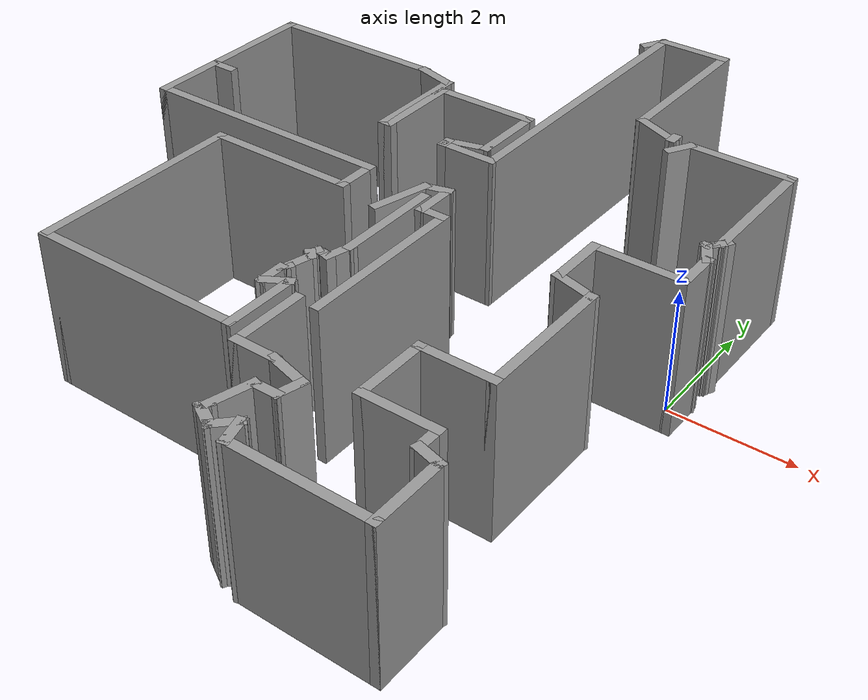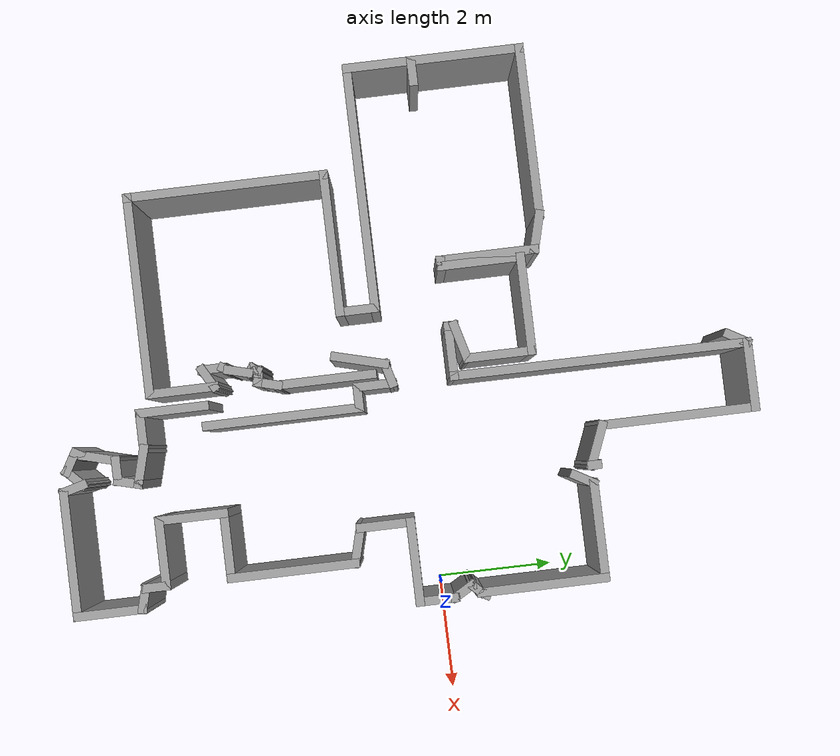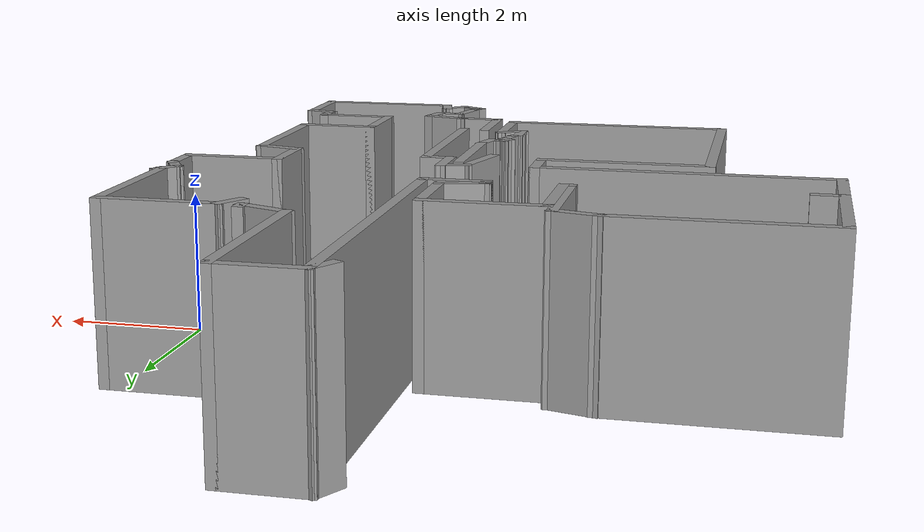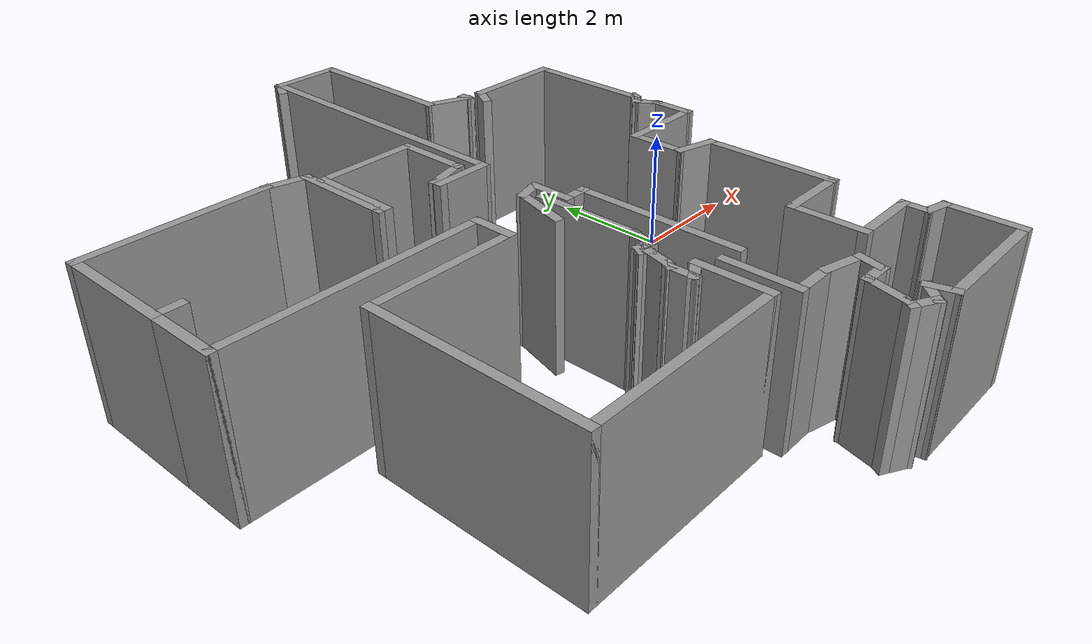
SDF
<?xml version='1.0'?>
<sdf version='1.6'>
  <model name='Untitled'>
    <pose frame=''>-4.2949 -0.2647 0 0 -0 0</pose>
    <link name='Wall_11'>
      <collision name='Wall_11_Collision'>
        <geometry>
          <box>
            <size>1 0.15 2.5</size>
          </box>
        </geometry>
        <pose frame=''>0 0 1.25 0 -0 0</pose>
      </collision>
      <visual name='Wall_11_Visual'>
        <pose frame=''>0 0 1.25 0 -0 0</pose>
        <geometry>
          <box>
            <size>1 0.15 2.5</size>
          </box>
        </geometry>
        <material>
          <script>
            <uri>file://media/materials/scripts/gazebo.material</uri>
            <name>Gazebo/Grey</name>
          </script>
          <ambient>1 1 1 1</ambient>
        </material>
        <meta>
          <layer>0</layer>
        </meta>
      </visual>
      <pose frame=''>0.399139 0.885621 0 0 -0 3.14159</pose>
    </link>
    <link name='Wall_12'>
      <collision name='Wall_12_Collision'>
        <geometry>
          <box>
            <size>0.25 0.15 2.5</size>
          </box>
        </geometry>
        <pose frame=''>0 0 1.25 0 -0 0</pose>
      </collision>
      <visual name='Wall_12_Visual'>
        <pose frame=''>0 0 1.25 0 -0 0</pose>
        <geometry>
          <box>
            <size>0.25 0.15 2.5</size>
          </box>
        </geometry>
        <material>
          <script>
            <uri>file://media/materials/scripts/gazebo.material</uri>
            <name>Gazebo/Grey</name>
          </script>
          <ambient>1 1 1 1</ambient>
        </material>
        <meta>
          <layer>0</layer>
        </meta>
      </visual>
      <pose frame=''>-0.025861 0.935621 0 0 -0 1.5708</pose>
    </link>
    <link name='Wall_13'>
      <collision name='Wall_13_Collision'>
        <geometry>
          <box>
            <size>0.75 0.15 2.5</size>
          </box>
        </geometry>
        <pose frame=''>0 0 1.25 0 -0 0</pose>
      </collision>
      <visual name='Wall_13_Visual'>
        <pose frame=''>0 0 1.25 0 -0 0</pose>
        <geometry>
          <box>
            <size>0.75 0.15 2.5</size>
          </box>
        </geometry>
        <material>
          <script>
            <uri>file://media/materials/scripts/gazebo.material</uri>
            <name>Gazebo/Grey</name>
          </script>
          <ambient>1 1 1 1</ambient>
        </material>
        <meta>
          <layer>0</layer>
        </meta>
      </visual>
      <pose frame=''>0.263917 1.06327 0 0 -0 0.261799</pose>
    </link>
    <link name='Wall_14'>
      <collision name='Wall_14_Collision'>
        <geometry>
          <box>
            <size>1.25 0.15 2.5</size>
          </box>
        </geometry>
        <pose frame=''>0 0 1.25 0 -0 0</pose>
      </collision>
      <visual name='Wall_14_Visual'>
        <pose frame=''>0 0 1.25 0 -0 0</pose>
        <geometry>
          <box>
            <size>1.25 0.15 2.5</size>
          </box>
        </geometry>
        <material>
          <script>
            <uri>file://media/materials/scripts/gazebo.material</uri>
            <name>Gazebo/Grey</name>
          </script>
          <ambient>1 1 1 1</ambient>
        </material>
        <meta>
          <layer>0</layer>
        </meta>
      </visual>
      <pose frame=''>0.553695 1.69091 0 0 -0 1.5708</pose>
    </link>
    <link name='Wall_15'>
      <collision name='Wall_15_Collision'>
        <geometry>
          <box>
            <size>1.75 0.15 2.5</size>
          </box>
        </geometry>
        <pose frame=''>0 0 1.25 0 -0 0</pose>
      </collision>
      <visual name='Wall_15_Visual'>
        <pose frame=''>0 0 1.25 0 -0 0</pose>
        <geometry>
          <box>
            <size>1.75 0.15 2.5</size>
          </box>
        </geometry>
        <material>
          <script>
            <uri>file://media/materials/scripts/gazebo.material</uri>
            <name>Gazebo/Grey</name>
          </script>
          <ambient>1 1 1 1</ambient>
        </material>
        <meta>
          <layer>0</layer>
        </meta>
      </visual>
      <pose frame=''>-0.246305 2.24091 0 0 -0 3.14159</pose>
    </link>
    <link name='Wall_16'>
      <collision name='Wall_16_Collision'>
        <geometry>
          <box>
            <size>1.5 0.15 2.5</size>
          </box>
        </geometry>
        <pose frame=''>0 0 1.25 0 -0 0</pose>
      </collision>
      <visual name='Wall_16_Visual'>
        <pose frame=''>0 0 1.25 0 -0 0</pose>
        <geometry>
          <box>
            <size>1.5 0.15 2.5</size>
          </box>
        </geometry>
        <material>
          <script>
            <uri>file://media/materials/scripts/gazebo.material</uri>
            <name>Gazebo/Grey</name>
          </script>
          <ambient>1 1 1 1</ambient>
        </material>
        <meta>
          <layer>0</layer>
        </meta>
      </visual>
      <pose frame=''>-1.04631 1.56591 0 0 -0 -1.5708</pose>
    </link>
    <link name='Wall_17'>
      <collision name='Wall_17_Collision'>
        <geometry>
          <box>
            <size>0.25 0.15 2.5</size>
          </box>
        </geometry>
        <pose frame=''>0 0 1.25 0 -0 0</pose>
      </collision>
      <visual name='Wall_17_Visual'>
        <pose frame=''>0 0 1.25 0 -0 0</pose>
        <geometry>
          <box>
            <size>0.25 0.15 2.5</size>
          </box>
        </geometry>
        <material>
          <script>
            <uri>file://media/materials/scripts/gazebo.material</uri>
            <name>Gazebo/Grey</name>
          </script>
          <ambient>1 1 1 1</ambient>
        </material>
        <meta>
          <layer>0</layer>
        </meta>
      </visual>
      <pose frame=''>-1.09631 0.890912 0 0 -0 3.14159</pose>
    </link>
    <link name='Wall_18'>
      <collision name='Wall_18_Collision'>
        <geometry>
          <box>
            <size>1.75 0.15 2.5</size>
          </box>
        </geometry>
        <pose frame=''>0 0 1.25 0 -0 0</pose>
      </collision>
      <visual name='Wall_18_Visual'>
        <pose frame=''>0 0 1.25 0 -0 0</pose>
        <geometry>
          <box>
            <size>1.75 0.15 2.5</size>
          </box>
        </geometry>
        <material>
          <script>
            <uri>file://media/materials/scripts/gazebo.material</uri>
            <name>Gazebo/Grey</name>
          </script>
          <ambient>1 1 1 1</ambient>
        </material>
        <meta>
          <layer>0</layer>
        </meta>
      </visual>
      <pose frame=''>-1.1463 1.69091 0 0 -0 1.5708</pose>
    </link>
    <link name='Wall_19'>
      <collision name='Wall_19_Collision'>
        <geometry>
          <box>
            <size>0.75 0.15 2.5</size>
          </box>
        </geometry>
        <pose frame=''>0 0 1.25 0 -0 0</pose>
      </collision>
      <visual name='Wall_19_Visual'>
        <pose frame=''>0 0 1.25 0 -0 0</pose>
        <geometry>
          <box>
            <size>0.75 0.15 2.5</size>
          </box>
        </geometry>
        <material>
          <script>
            <uri>file://media/materials/scripts/gazebo.material</uri>
            <name>Gazebo/Grey</name>
          </script>
          <ambient>1 1 1 1</ambient>
        </material>
        <meta>
          <layer>0</layer>
        </meta>
      </visual>
      <pose frame=''>-1.43608 2.56856 0 0 -0 2.87979</pose>
    </link>
    <link name='Wall_2'>
      <collision name='Wall_2_Collision'>
        <geometry>
          <box>
            <size>1.25 0.15 2.5</size>
          </box>
        </geometry>
        <pose frame=''>0 0 1.25 0 -0 0</pose>
      </collision>
      <visual name='Wall_2_Visual'>
        <pose frame=''>0 0 1.25 0 -0 0</pose>
        <geometry>
          <box>
            <size>1.25 0.15 2.5</size>
          </box>
        </geometry>
        <material>
          <script>
            <uri>file://media/materials/scripts/gazebo.material</uri>
            <name>Gazebo/Grey</name>
          </script>
          <ambient>1 1 1 1</ambient>
        </material>
        <meta>
          <layer>0</layer>
        </meta>
      </visual>
      <pose frame=''>1.39515 5.87075 0 0 -0 3.14159</pose>
    </link>
    <link name='Wall_20'>
      <collision name='Wall_20_Collision'>
        <geometry>
          <box>
            <size>3 0.15 2.5</size>
          </box>
        </geometry>
        <pose frame=''>0 0 1.25 0 -0 0</pose>
      </collision>
      <visual name='Wall_20_Visual'>
        <pose frame=''>0 0 1.25 0 -0 0</pose>
        <geometry>
          <box>
            <size>3 0.15 2.5</size>
          </box>
        </geometry>
        <material>
          <script>
            <uri>file://media/materials/scripts/gazebo.material</uri>
            <name>Gazebo/Grey</name>
          </script>
          <ambient>1 1 1 1</ambient>
        </material>
        <meta>
          <layer>0</layer>
        </meta>
      </visual>
      <pose frame=''>-3.15086 2.6462 0 0 -0 3.14159</pose>
    </link>
    <link name='Wall_21'>
      <collision name='Wall_21_Collision'>
        <geometry>
          <box>
            <size>2 0.15 2.5</size>
          </box>
        </geometry>
        <pose frame=''>0 0 1.25 0 -0 0</pose>
      </collision>
      <visual name='Wall_21_Visual'>
        <pose frame=''>0 0 1.25 0 -0 0</pose>
        <geometry>
          <box>
            <size>2 0.15 2.5</size>
          </box>
        </geometry>
        <material>
          <script>
            <uri>file://media/materials/scripts/gazebo.material</uri>
            <name>Gazebo/Grey</name>
          </script>
          <ambient>1 1 1 1</ambient>
        </material>
        <meta>
          <layer>0</layer>
        </meta>
      </visual>
      <pose frame=''>-4.57586 1.7212 0 0 -0 -1.5708</pose>
    </link>
    <link name='Wall_22'>
      <collision name='Wall_22_Collision'>
        <geometry>
          <box>
            <size>0.5 0.15 2.5</size>
          </box>
        </geometry>
        <pose frame=''>0 0 1.25 0 -0 0</pose>
      </collision>
      <visual name='Wall_22_Visual'>
        <pose frame=''>0 0 1.25 0 -0 0</pose>
        <geometry>
          <box>
            <size>0.5 0.15 2.5</size>
          </box>
        </geometry>
        <material>
          <script>
            <uri>file://media/materials/scripts/gazebo.material</uri>
            <name>Gazebo/Grey</name>
          </script>
          <ambient>1 1 1 1</ambient>
        </material>
        <meta>
          <layer>0</layer>
        </meta>
      </visual>
      <pose frame=''>-4.40086 0.796204 0 0 -0 0</pose>
    </link>
    <link name='Wall_24'>
      <collision name='Wall_24_Collision'>
        <geometry>
          <box>
            <size>1.25 0.15 2.5</size>
          </box>
        </geometry>
        <pose frame=''>0 0 1.25 0 -0 0</pose>
      </collision>
      <visual name='Wall_24_Visual'>
        <pose frame=''>0 0 1.25 0 -0 0</pose>
        <geometry>
          <box>
            <size>1.25 0.15 2.5</size>
          </box>
        </geometry>
        <material>
          <script>
            <uri>file://media/materials/scripts/gazebo.material</uri>
            <name>Gazebo/Grey</name>
          </script>
          <ambient>1 1 1 1</ambient>
        </material>
        <meta>
          <layer>0</layer>
        </meta>
      </visual>
      <pose frame=''>-4.57586 0.246204 0 0 -0 -1.5708</pose>
    </link>
    <link name='Wall_25'>
      <collision name='Wall_25_Collision'>
        <geometry>
          <box>
            <size>4.25 0.15 2.5</size>
          </box>
        </geometry>
        <pose frame=''>0 0 1.25 0 -0 0</pose>
      </collision>
      <visual name='Wall_25_Visual'>
        <pose frame=''>0 0 1.25 0 -0 0</pose>
        <geometry>
          <box>
            <size>4.25 0.15 2.5</size>
          </box>
        </geometry>
        <material>
          <script>
            <uri>file://media/materials/scripts/gazebo.material</uri>
            <name>Gazebo/Grey</name>
          </script>
          <ambient>1 1 1 1</ambient>
        </material>
        <meta>
          <layer>0</layer>
        </meta>
      </visual>
      <pose frame=''>-2.52586 -0.303796 0 0 -0 0</pose>
    </link>
    <link name='Wall_26'>
      <collision name='Wall_26_Collision'>
        <geometry>
          <box>
            <size>0.75 0.15 2.5</size>
          </box>
        </geometry>
        <pose frame=''>0 0 1.25 0 -0 0</pose>
      </collision>
      <visual name='Wall_26_Visual'>
        <pose frame=''>0 0 1.25 0 -0 0</pose>
        <geometry>
          <box>
            <size>0.75 0.15 2.5</size>
          </box>
        </geometry>
        <material>
          <script>
            <uri>file://media/materials/scripts/gazebo.material</uri>
            <name>Gazebo/Grey</name>
          </script>
          <ambient>1 1 1 1</ambient>
        </material>
        <meta>
          <layer>0</layer>
        </meta>
      </visual>
      <pose frame=''>-0.475861 -0.603796 0 0 -0 -1.5708</pose>
    </link>
    <link name='Wall_27'>
      <collision name='Wall_27_Collision'>
        <geometry>
          <box>
            <size>2.5 0.15 2.5</size>
          </box>
        </geometry>
        <pose frame=''>0 0 1.25 0 -0 0</pose>
      </collision>
      <visual name='Wall_27_Visual'>
        <pose frame=''>0 0 1.25 0 -0 0</pose>
        <geometry>
          <box>
            <size>2.5 0.15 2.5</size>
          </box>
        </geometry>
        <material>
          <script>
            <uri>file://media/materials/scripts/gazebo.material</uri>
            <name>Gazebo/Grey</name>
          </script>
          <ambient>1 1 1 1</ambient>
        </material>
        <meta>
          <layer>0</layer>
        </meta>
      </visual>
      <pose frame=''>-1.65086 -0.903796 0 0 -0 3.14159</pose>
    </link>
    <link name='Wall_29'>
      <collision name='Wall_29_Collision'>
        <geometry>
          <box>
            <size>3.5 0.15 2.5</size>
          </box>
        </geometry>
        <pose frame=''>0 0 1.25 0 -0 0</pose>
      </collision>
      <visual name='Wall_29_Visual'>
        <pose frame=''>0 0 1.25 0 -0 0</pose>
        <geometry>
          <box>
            <size>3.5 0.15 2.5</size>
          </box>
        </geometry>
        <material>
          <script>
            <uri>file://media/materials/scripts/gazebo.material</uri>
            <name>Gazebo/Grey</name>
          </script>
          <ambient>1 1 1 1</ambient>
        </material>
        <meta>
          <layer>0</layer>
        </meta>
      </visual>
      <pose frame=''>-2.82586 -2.5788 0 0 -0 -1.5708</pose>
    </link>
    <link name='Wall_3'>
      <collision name='Wall_3_Collision'>
        <geometry>
          <box>
            <size>0.5 0.15 2.5</size>
          </box>
        </geometry>
        <pose frame=''>0 0 1.25 0 -0 0</pose>
      </collision>
      <visual name='Wall_3_Visual'>
        <pose frame=''>0 0 1.25 0 -0 0</pose>
        <geometry>
          <box>
            <size>0.5 0.15 2.5</size>
          </box>
        </geometry>
        <material>
          <script>
            <uri>file://media/materials/scripts/gazebo.material</uri>
            <name>Gazebo/Grey</name>
          </script>
          <ambient>1 1 1 1</ambient>
        </material>
        <meta>
          <layer>0</layer>
        </meta>
      </visual>
      <pose frame=''>0.757655 5.71919 0 0 -0 -2.0944</pose>
    </link>
    <link name='Wall_30'>
      <collision name='Wall_30_Collision'>
        <geometry>
          <box>
            <size>3.5 0.15 2.5</size>
          </box>
        </geometry>
        <pose frame=''>0 0 1.25 0 -0 0</pose>
      </collision>
      <visual name='Wall_30_Visual'>
        <pose frame=''>0 0 1.25 0 -0 0</pose>
        <geometry>
          <box>
            <size>3.5 0.15 2.5</size>
          </box>
        </geometry>
        <material>
          <script>
            <uri>file://media/materials/scripts/gazebo.material</uri>
            <name>Gazebo/Grey</name>
          </script>
          <ambient>1 1 1 1</ambient>
        </material>
        <meta>
          <layer>0</layer>
        </meta>
      </visual>
      <pose frame=''>-1.15086 -4.2538 0 0 -0 0</pose>
    </link>
    <link name='Wall_31'>
      <collision name='Wall_31_Collision'>
        <geometry>
          <box>
            <size>1.25 0.15 2.5</size>
          </box>
        </geometry>
        <pose frame=''>0 0 1.25 0 -0 0</pose>
      </collision>
      <visual name='Wall_31_Visual'>
        <pose frame=''>0 0 1.25 0 -0 0</pose>
        <geometry>
          <box>
            <size>1.25 0.15 2.5</size>
          </box>
        </geometry>
        <material>
          <script>
            <uri>file://media/materials/scripts/gazebo.material</uri>
            <name>Gazebo/Grey</name>
          </script>
          <ambient>1 1 1 1</ambient>
        </material>
        <meta>
          <layer>0</layer>
        </meta>
      </visual>
      <pose frame=''>0.524139 -3.7038 0 0 -0 1.5708</pose>
    </link>
    <link name='Wall_33'>
      <collision name='Wall_33_Collision'>
        <geometry>
          <box>
            <size>0.5 0.15 2.5</size>
          </box>
        </geometry>
        <pose frame=''>0 0 1.25 0 -0 0</pose>
      </collision>
      <visual name='Wall_33_Visual'>
        <pose frame=''>0 0 1.25 0 -0 0</pose>
        <geometry>
          <box>
            <size>0.5 0.15 2.5</size>
          </box>
        </geometry>
        <material>
          <script>
            <uri>file://media/materials/scripts/gazebo.material</uri>
            <name>Gazebo/Grey</name>
          </script>
          <ambient>1 1 1 1</ambient>
        </material>
        <meta>
          <layer>0</layer>
        </meta>
      </visual>
      <pose frame=''>0.372585 -3.2413 0 0 -0 -2.61799</pose>
    </link>
    <link name='Wall_34'>
      <collision name='Wall_34_Collision'>
        <geometry>
          <box>
            <size>0.5 0.15 2.5</size>
          </box>
        </geometry>
        <pose frame=''>0 0 1.25 0 -0 0</pose>
      </collision>
      <visual name='Wall_34_Visual'>
        <pose frame=''>0 0 1.25 0 -0 0</pose>
        <geometry>
          <box>
            <size>0.5 0.15 2.5</size>
          </box>
        </geometry>
        <material>
          <script>
            <uri>file://media/materials/scripts/gazebo.material</uri>
            <name>Gazebo/Grey</name>
          </script>
          <ambient>1 1 1 1</ambient>
        </material>
        <meta>
          <layer>0</layer>
        </meta>
      </visual>
      <pose frame=''>0.221031 -3.1538 0 0 -0 1.5708</pose>
    </link>
    <link name='Wall_35'>
      <collision name='Wall_35_Collision'>
        <geometry>
          <box>
            <size>0.25 0.15 2.5</size>
          </box>
        </geometry>
        <pose frame=''>0 0 1.25 0 -0 0</pose>
      </collision>
      <visual name='Wall_35_Visual'>
        <pose frame=''>0 0 1.25 0 -0 0</pose>
        <geometry>
          <box>
            <size>0.25 0.15 2.5</size>
          </box>
        </geometry>
        <material>
          <script>
            <uri>file://media/materials/scripts/gazebo.material</uri>
            <name>Gazebo/Grey</name>
          </script>
          <ambient>1 1 1 1</ambient>
        </material>
        <meta>
          <layer>0</layer>
        </meta>
      </visual>
      <pose frame=''>0.24603 -2.93549 0 0 -0 1.0472</pose>
    </link>
    <link name='Wall_36'>
      <collision name='Wall_36_Collision'>
        <geometry>
          <box>
            <size>0.5 0.15 2.5</size>
          </box>
        </geometry>
        <pose frame=''>0 0 1.25 0 -0 0</pose>
      </collision>
      <visual name='Wall_36_Visual'>
        <pose frame=''>0 0 1.25 0 -0 0</pose>
        <geometry>
          <box>
            <size>0.5 0.15 2.5</size>
          </box>
        </geometry>
        <material>
          <script>
            <uri>file://media/materials/scripts/gazebo.material</uri>
            <name>Gazebo/Grey</name>
          </script>
          <ambient>1 1 1 1</ambient>
        </material>
        <meta>
          <layer>0</layer>
        </meta>
      </visual>
      <pose frame=''>0.316324 -2.72316 0 0 -0 1.309</pose>
    </link>
    <link name='Wall_37'>
      <collision name='Wall_37_Collision'>
        <geometry>
          <box>
            <size>0.25 0.15 2.5</size>
          </box>
        </geometry>
        <pose frame=''>0 0 1.25 0 -0 0</pose>
      </collision>
      <visual name='Wall_37_Visual'>
        <pose frame=''>0 0 1.25 0 -0 0</pose>
        <geometry>
          <box>
            <size>0.25 0.15 2.5</size>
          </box>
        </geometry>
        <material>
          <script>
            <uri>file://media/materials/scripts/gazebo.material</uri>
            <name>Gazebo/Grey</name>
          </script>
          <ambient>1 1 1 1</ambient>
        </material>
        <meta>
          <layer>0</layer>
        </meta>
      </visual>
      <pose frame=''>0.326262 -2.51876 0 0 -0 2.35619</pose>
    </link>
    <link name='Wall_38'>
      <collision name='Wall_38_Collision'>
        <geometry>
          <box>
            <size>0.25 0.15 2.5</size>
          </box>
        </geometry>
        <pose frame=''>0 0 1.25 0 -0 0</pose>
      </collision>
      <visual name='Wall_38_Visual'>
        <pose frame=''>0 0 1.25 0 -0 0</pose>
        <geometry>
          <box>
            <size>0.25 0.15 2.5</size>
          </box>
        </geometry>
        <material>
          <script>
            <uri>file://media/materials/scripts/gazebo.material</uri>
            <name>Gazebo/Grey</name>
          </script>
          <ambient>1 1 1 1</ambient>
        </material>
        <meta>
          <layer>0</layer>
        </meta>
      </visual>
      <pose frame=''>0.315906 -2.44011 0 0 -0 1.0472</pose>
    </link>
    <link name='Wall_39'>
      <collision name='Wall_39_Collision'>
        <geometry>
          <box>
            <size>0.25 0.15 2.5</size>
          </box>
        </geometry>
        <pose frame=''>0 0 1.25 0 -0 0</pose>
      </collision>
      <visual name='Wall_39_Visual'>
        <pose frame=''>0 0 1.25 0 -0 0</pose>
        <geometry>
          <box>
            <size>0.25 0.15 2.5</size>
          </box>
        </geometry>
        <material>
          <script>
            <uri>file://media/materials/scripts/gazebo.material</uri>
            <name>Gazebo/Grey</name>
          </script>
          <ambient>1 1 1 1</ambient>
        </material>
        <meta>
          <layer>0</layer>
        </meta>
      </visual>
      <pose frame=''>0.390906 -2.39681 0 0 -0 0</pose>
    </link>
    <link name='Wall_40'>
      <collision name='Wall_40_Collision'>
        <geometry>
          <box>
            <size>0.25 0.15 2.5</size>
          </box>
        </geometry>
        <pose frame=''>0 0 1.25 0 -0 0</pose>
      </collision>
      <visual name='Wall_40_Visual'>
        <pose frame=''>0 0 1.25 0 -0 0</pose>
        <geometry>
          <box>
            <size>0.25 0.15 2.5</size>
          </box>
        </geometry>
        <material>
          <script>
            <uri>file://media/materials/scripts/gazebo.material</uri>
            <name>Gazebo/Grey</name>
          </script>
          <ambient>1 1 1 1</ambient>
        </material>
        <meta>
          <layer>0</layer>
        </meta>
      </visual>
      <pose frame=''>0.489203 -2.40975 0 0 -0 -0.261799</pose>
    </link>
    <link name='Wall_41'>
      <collision name='Wall_41_Collision'>
        <geometry>
          <box>
            <size>0.5 0.15 2.5</size>
          </box>
        </geometry>
        <pose frame=''>0 0 1.25 0 -0 0</pose>
      </collision>
      <visual name='Wall_41_Visual'>
        <pose frame=''>0 0 1.25 0 -0 0</pose>
        <geometry>
          <box>
            <size>0.5 0.15 2.5</size>
          </box>
        </geometry>
        <material>
          <script>
            <uri>file://media/materials/scripts/gazebo.material</uri>
            <name>Gazebo/Grey</name>
          </script>
          <ambient>1 1 1 1</ambient>
        </material>
        <meta>
          <layer>0</layer>
        </meta>
      </visual>
      <pose frame=''>0.582792 -2.25365 0 0 -0 1.309</pose>
    </link>
    <link name='Wall_43'>
      <collision name='Wall_43_Collision'>
        <geometry>
          <box>
            <size>1.75 0.15 2.5</size>
          </box>
        </geometry>
        <pose frame=''>0 0 1.25 0 -0 0</pose>
      </collision>
      <visual name='Wall_43_Visual'>
        <pose frame=''>0 0 1.25 0 -0 0</pose>
        <geometry>
          <box>
            <size>1.75 0.15 2.5</size>
          </box>
        </geometry>
        <material>
          <script>
            <uri>file://media/materials/scripts/gazebo.material</uri>
            <name>Gazebo/Grey</name>
          </script>
          <ambient>1 1 1 1</ambient>
        </material>
        <meta>
          <layer>0</layer>
        </meta>
      </visual>
      <pose frame=''>0.628086 -1.28461 0 0 -0 1.5708</pose>
    </link>
    <link name='Wall_45'>
      <collision name='Wall_45_Collision'>
        <geometry>
          <box>
            <size>1 0.15 2.5</size>
          </box>
        </geometry>
        <pose frame=''>0 0 1.25 0 -0 0</pose>
      </collision>
      <visual name='Wall_45_Visual'>
        <pose frame=''>0 0 1.25 0 -0 0</pose>
        <geometry>
          <box>
            <size>1 0.15 2.5</size>
          </box>
        </geometry>
        <material>
          <script>
            <uri>file://media/materials/scripts/gazebo.material</uri>
            <name>Gazebo/Grey</name>
          </script>
          <ambient>1 1 1 1</ambient>
        </material>
        <meta>
          <layer>0</layer>
        </meta>
      </visual>
      <pose frame=''>0.371292 -0.663022 0 0 -0 1.309</pose>
    </link>
    <link name='Wall_47'>
      <collision name='Wall_47_Collision'>
        <geometry>
          <box>
            <size>0.5 0.15 2.5</size>
          </box>
        </geometry>
        <pose frame=''>0 0 1.25 0 -0 0</pose>
      </collision>
      <visual name='Wall_47_Visual'>
        <pose frame=''>0 0 1.25 0 -0 0</pose>
        <geometry>
          <box>
            <size>0.5 0.15 2.5</size>
          </box>
        </geometry>
        <material>
          <script>
            <uri>file://media/materials/scripts/gazebo.material</uri>
            <name>Gazebo/Grey</name>
          </script>
          <ambient>1 1 1 1</ambient>
        </material>
        <meta>
          <layer>0</layer>
        </meta>
      </visual>
      <pose frame=''>0.650327 -0.20721 0 0 -0 0.261799</pose>
    </link>
    <link name='Wall_48'>
      <collision name='Wall_48_Collision'>
        <geometry>
          <box>
            <size>0.75 0.15 2.5</size>
          </box>
        </geometry>
        <pose frame=''>0 0 1.25 0 -0 0</pose>
      </collision>
      <visual name='Wall_48_Visual'>
        <pose frame=''>0 0 1.25 0 -0 0</pose>
        <geometry>
          <box>
            <size>0.75 0.15 2.5</size>
          </box>
        </geometry>
        <material>
          <script>
            <uri>file://media/materials/scripts/gazebo.material</uri>
            <name>Gazebo/Grey</name>
          </script>
          <ambient>1 1 1 1</ambient>
        </material>
        <meta>
          <layer>0</layer>
        </meta>
      </visual>
      <pose frame=''>0.819364 -0.461917 0 0 -0 -1.5708</pose>
    </link>
    <link name='Wall_49'>
      <collision name='Wall_49_Collision'>
        <geometry>
          <box>
            <size>0.5 0.15 2.5</size>
          </box>
        </geometry>
        <pose frame=''>0 0 1.25 0 -0 0</pose>
      </collision>
      <visual name='Wall_49_Visual'>
        <pose frame=''>0 0 1.25 0 -0 0</pose>
        <geometry>
          <box>
            <size>0.5 0.15 2.5</size>
          </box>
        </geometry>
        <material>
          <script>
            <uri>file://media/materials/scripts/gazebo.material</uri>
            <name>Gazebo/Grey</name>
          </script>
          <ambient>1 1 1 1</ambient>
        </material>
        <meta>
          <layer>0</layer>
        </meta>
      </visual>
      <pose frame=''>0.994364 -0.761917 0 0 -0 0</pose>
    </link>
    <link name='Wall_52'>
      <collision name='Wall_52_Collision'>
        <geometry>
          <box>
            <size>2.75 0.15 2.5</size>
          </box>
        </geometry>
        <pose frame=''>0 0 1.25 0 -0 0</pose>
      </collision>
      <visual name='Wall_52_Visual'>
        <pose frame=''>0 0 1.25 0 -0 0</pose>
        <geometry>
          <box>
            <size>2.75 0.15 2.5</size>
          </box>
        </geometry>
        <material>
          <script>
            <uri>file://media/materials/scripts/gazebo.material</uri>
            <name>Gazebo/Grey</name>
          </script>
          <ambient>1 1 1 1</ambient>
        </material>
        <meta>
          <layer>0</layer>
        </meta>
      </visual>
      <pose frame=''>1.16936 -2.06192 0 0 -0 -1.5708</pose>
    </link>
    <link name='Wall_54'>
      <collision name='Wall_54_Collision'>
        <geometry>
          <box>
            <size>1.25 0.15 2.5</size>
          </box>
        </geometry>
        <pose frame=''>0 0 1.25 0 -0 0</pose>
      </collision>
      <visual name='Wall_54_Visual'>
        <pose frame=''>0 0 1.25 0 -0 0</pose>
        <geometry>
          <box>
            <size>1.25 0.15 2.5</size>
          </box>
        </geometry>
        <material>
          <script>
            <uri>file://media/materials/scripts/gazebo.material</uri>
            <name>Gazebo/Grey</name>
          </script>
          <ambient>1 1 1 1</ambient>
        </material>
        <meta>
          <layer>0</layer>
        </meta>
      </visual>
      <pose frame=''>0.824757 -3.90623 0 0 -0 -1.5708</pose>
    </link>
    <link name='Wall_55'>
      <collision name='Wall_55_Collision'>
        <geometry>
          <box>
            <size>0.75 0.15 2.5</size>
          </box>
        </geometry>
        <pose frame=''>0 0 1.25 0 -0 0</pose>
      </collision>
      <visual name='Wall_55_Visual'>
        <pose frame=''>0 0 1.25 0 -0 0</pose>
        <geometry>
          <box>
            <size>0.75 0.15 2.5</size>
          </box>
        </geometry>
        <material>
          <script>
            <uri>file://media/materials/scripts/gazebo.material</uri>
            <name>Gazebo/Grey</name>
          </script>
          <ambient>1 1 1 1</ambient>
        </material>
        <meta>
          <layer>0</layer>
        </meta>
      </visual>
      <pose frame=''>1.12476 -4.45623 0 0 -0 0</pose>
    </link>
    <link name='Wall_56'>
      <collision name='Wall_56_Collision'>
        <geometry>
          <box>
            <size>0.75 0.15 2.5</size>
          </box>
        </geometry>
        <pose frame=''>0 0 1.25 0 -0 0</pose>
      </collision>
      <visual name='Wall_56_Visual'>
        <pose frame=''>0 0 1.25 0 -0 0</pose>
        <geometry>
          <box>
            <size>0.75 0.15 2.5</size>
          </box>
        </geometry>
        <material>
          <script>
            <uri>file://media/materials/scripts/gazebo.material</uri>
            <name>Gazebo/Grey</name>
          </script>
          <ambient>1 1 1 1</ambient>
        </material>
        <meta>
          <layer>0</layer>
        </meta>
      </visual>
      <pose frame=''>1.71453 -4.53388 0 0 -0 -0.261799</pose>
    </link>
    <link name='Wall_58'>
      <collision name='Wall_58_Collision'>
        <geometry>
          <box>
            <size>0.5 0.15 2.5</size>
          </box>
        </geometry>
        <pose frame=''>0 0 1.25 0 -0 0</pose>
      </collision>
      <visual name='Wall_58_Visual'>
        <pose frame=''>0 0 1.25 0 -0 0</pose>
        <geometry>
          <box>
            <size>0.5 0.15 2.5</size>
          </box>
        </geometry>
        <material>
          <script>
            <uri>file://media/materials/scripts/gazebo.material</uri>
            <name>Gazebo/Grey</name>
          </script>
          <ambient>1 1 1 1</ambient>
        </material>
        <meta>
          <layer>0</layer>
        </meta>
      </visual>
      <pose frame=''>1.95902 -4.78056 0 0 -0 -1.8326</pose>
    </link>
    <link name='Wall_59'>
      <collision name='Wall_59_Collision'>
        <geometry>
          <box>
            <size>0.5 0.15 2.5</size>
          </box>
        </geometry>
        <pose frame=''>0 0 1.25 0 -0 0</pose>
      </collision>
      <visual name='Wall_59_Visual'>
        <pose frame=''>0 0 1.25 0 -0 0</pose>
        <geometry>
          <box>
            <size>0.5 0.15 2.5</size>
          </box>
        </geometry>
        <material>
          <script>
            <uri>file://media/materials/scripts/gazebo.material</uri>
            <name>Gazebo/Grey</name>
          </script>
          <ambient>1 1 1 1</ambient>
        </material>
        <meta>
          <layer>0</layer>
        </meta>
      </visual>
      <pose frame=''>1.73873 -4.9496 0 0 -0 3.14159</pose>
    </link>
    <link name='Wall_60'>
      <collision name='Wall_60_Collision'>
        <geometry>
          <box>
            <size>0.75 0.15 2.5</size>
          </box>
        </geometry>
        <pose frame=''>0 0 1.25 0 -0 0</pose>
      </collision>
      <visual name='Wall_60_Visual'>
        <pose frame=''>0 0 1.25 0 -0 0</pose>
        <geometry>
          <box>
            <size>0.75 0.15 2.5</size>
          </box>
        </geometry>
        <material>
          <script>
            <uri>file://media/materials/scripts/gazebo.material</uri>
            <name>Gazebo/Grey</name>
          </script>
          <ambient>1 1 1 1</ambient>
        </material>
        <meta>
          <layer>0</layer>
        </meta>
      </visual>
      <pose frame=''>1.48608 -5.23938 0 0 -0 -1.8326</pose>
    </link>
    <link name='Wall_61'>
      <collision name='Wall_61_Collision'>
        <geometry>
          <box>
            <size>0.25 0.15 2.5</size>
          </box>
        </geometry>
        <pose frame=''>0 0 1.25 0 -0 0</pose>
      </collision>
      <visual name='Wall_61_Visual'>
        <pose frame=''>0 0 1.25 0 -0 0</pose>
        <geometry>
          <box>
            <size>0.25 0.15 2.5</size>
          </box>
        </geometry>
        <material>
          <script>
            <uri>file://media/materials/scripts/gazebo.material</uri>
            <name>Gazebo/Grey</name>
          </script>
          <ambient>1 1 1 1</ambient>
        </material>
        <meta>
          <layer>0</layer>
        </meta>
      </visual>
      <pose frame=''>1.38343 -5.57246 0 0 -0 -2.0944</pose>
    </link>
    <link name='Wall_62'>
      <collision name='Wall_62_Collision'>
        <geometry>
          <box>
            <size>0.5 0.15 2.5</size>
          </box>
        </geometry>
        <pose frame=''>0 0 1.25 0 -0 0</pose>
      </collision>
      <visual name='Wall_62_Visual'>
        <pose frame=''>0 0 1.25 0 -0 0</pose>
        <geometry>
          <box>
            <size>0.5 0.15 2.5</size>
          </box>
        </geometry>
        <material>
          <script>
            <uri>file://media/materials/scripts/gazebo.material</uri>
            <name>Gazebo/Grey</name>
          </script>
          <ambient>1 1 1 1</ambient>
        </material>
        <meta>
          <layer>0</layer>
        </meta>
      </visual>
      <pose frame=''>1.50999 -5.70326 0 0 -0 -0.523599</pose>
    </link>
    <link name='Wall_63'>
      <collision name='Wall_63_Collision'>
        <geometry>
          <box>
            <size>0.5 0.15 2.5</size>
          </box>
        </geometry>
        <pose frame=''>0 0 1.25 0 -0 0</pose>
      </collision>
      <visual name='Wall_63_Visual'>
        <pose frame=''>0 0 1.25 0 -0 0</pose>
        <geometry>
          <box>
            <size>0.5 0.15 2.5</size>
          </box>
        </geometry>
        <material>
          <script>
            <uri>file://media/materials/scripts/gazebo.material</uri>
            <name>Gazebo/Grey</name>
          </script>
          <ambient>1 1 1 1</ambient>
        </material>
        <meta>
          <layer>0</layer>
        </meta>
      </visual>
      <pose frame=''>1.78529 -5.66701 0 0 -0 0.785398</pose>
    </link>
    <link name='Wall_64'>
      <collision name='Wall_64_Collision'>
        <geometry>
          <box>
            <size>0.5 0.15 2.5</size>
          </box>
        </geometry>
        <pose frame=''>0 0 1.25 0 -0 0</pose>
      </collision>
      <visual name='Wall_64_Visual'>
        <pose frame=''>0 0 1.25 0 -0 0</pose>
        <geometry>
          <box>
            <size>0.5 0.15 2.5</size>
          </box>
        </geometry>
        <material>
          <script>
            <uri>file://media/materials/scripts/gazebo.material</uri>
            <name>Gazebo/Grey</name>
          </script>
          <ambient>1 1 1 1</ambient>
        </material>
        <meta>
          <layer>0</layer>
        </meta>
      </visual>
      <pose frame=''>1.95432 -5.71231 0 0 -0 -1.309</pose>
    </link>
    <link name='Wall_65'>
      <collision name='Wall_65_Collision'>
        <geometry>
          <box>
            <size>2.25 0.15 2.5</size>
          </box>
        </geometry>
        <pose frame=''>0 0 1.25 0 -0 0</pose>
      </collision>
      <visual name='Wall_65_Visual'>
        <pose frame=''>0 0 1.25 0 -0 0</pose>
        <geometry>
          <box>
            <size>2.25 0.15 2.5</size>
          </box>
        </geometry>
        <material>
          <script>
            <uri>file://media/materials/scripts/gazebo.material</uri>
            <name>Gazebo/Grey</name>
          </script>
          <ambient>1 1 1 1</ambient>
        </material>
        <meta>
          <layer>0</layer>
        </meta>
      </visual>
      <pose frame=''>3.04962 -5.88134 0 0 -0 0</pose>
    </link>
    <link name='Wall_66'>
      <collision name='Wall_66_Collision'>
        <geometry>
          <box>
            <size>1.25 0.15 2.5</size>
          </box>
        </geometry>
        <pose frame=''>0 0 1.25 0 -0 0</pose>
      </collision>
      <visual name='Wall_66_Visual'>
        <pose frame=''>0 0 1.25 0 -0 0</pose>
        <geometry>
          <box>
            <size>1.25 0.15 2.5</size>
          </box>
        </geometry>
        <material>
          <script>
            <uri>file://media/materials/scripts/gazebo.material</uri>
            <name>Gazebo/Grey</name>
          </script>
          <ambient>1 1 1 1</ambient>
        </material>
        <meta>
          <layer>0</layer>
        </meta>
      </visual>
      <pose frame=''>4.09962 -5.33134 0 0 -0 1.5708</pose>
    </link>
    <link name='Wall_67'>
      <collision name='Wall_67_Collision'>
        <geometry>
          <box>
            <size>0.5 0.15 2.5</size>
          </box>
        </geometry>
        <pose frame=''>0 0 1.25 0 -0 0</pose>
      </collision>
      <visual name='Wall_67_Visual'>
        <pose frame=''>0 0 1.25 0 -0 0</pose>
        <geometry>
          <box>
            <size>0.5 0.15 2.5</size>
          </box>
        </geometry>
        <material>
          <script>
            <uri>file://media/materials/scripts/gazebo.material</uri>
            <name>Gazebo/Grey</name>
          </script>
          <ambient>1 1 1 1</ambient>
        </material>
        <meta>
          <layer>0</layer>
        </meta>
      </visual>
      <pose frame=''>3.93058 -4.73605 0 0 -0 2.87979</pose>
    </link>
    <link name='Wall_68'>
      <collision name='Wall_68_Collision'>
        <geometry>
          <box>
            <size>0.5 0.15 2.5</size>
          </box>
        </geometry>
        <pose frame=''>0 0 1.25 0 -0 0</pose>
      </collision>
      <visual name='Wall_68_Visual'>
        <pose frame=''>0 0 1.25 0 -0 0</pose>
        <geometry>
          <box>
            <size>0.5 0.15 2.5</size>
          </box>
        </geometry>
        <material>
          <script>
            <uri>file://media/materials/scripts/gazebo.material</uri>
            <name>Gazebo/Grey</name>
          </script>
          <ambient>1 1 1 1</ambient>
        </material>
        <meta>
          <layer>0</layer>
        </meta>
      </visual>
      <pose frame=''>3.76154 -4.51576 0 0 -0 1.5708</pose>
    </link>
    <link name='Wall_69'>
      <collision name='Wall_69_Collision'>
        <geometry>
          <box>
            <size>1.25 0.15 2.5</size>
          </box>
        </geometry>
        <pose frame=''>0 0 1.25 0 -0 0</pose>
      </collision>
      <visual name='Wall_69_Visual'>
        <pose frame=''>0 0 1.25 0 -0 0</pose>
        <geometry>
          <box>
            <size>1.25 0.15 2.5</size>
          </box>
        </geometry>
        <material>
          <script>
            <uri>file://media/materials/scripts/gazebo.material</uri>
            <name>Gazebo/Grey</name>
          </script>
          <ambient>1 1 1 1</ambient>
        </material>
        <meta>
          <layer>0</layer>
        </meta>
      </visual>
      <pose frame=''>3.21154 -4.34076 0 0 -0 3.14159</pose>
    </link>
    <link name='Wall_71'>
      <collision name='Wall_71_Collision'>
        <geometry>
          <box>
            <size>1.25 0.15 2.5</size>
          </box>
        </geometry>
        <pose frame=''>0 0 1.25 0 -0 0</pose>
      </collision>
      <visual name='Wall_71_Visual'>
        <pose frame=''>0 0 1.25 0 -0 0</pose>
        <geometry>
          <box>
            <size>1.25 0.15 2.5</size>
          </box>
        </geometry>
        <material>
          <script>
            <uri>file://media/materials/scripts/gazebo.material</uri>
            <name>Gazebo/Grey</name>
          </script>
          <ambient>1 1 1 1</ambient>
        </material>
        <meta>
          <layer>0</layer>
        </meta>
      </visual>
      <pose frame=''>2.66154 -3.79076 0 0 -0 1.5708</pose>
    </link>
    <link name='Wall_72'>
      <collision name='Wall_72_Collision'>
        <geometry>
          <box>
            <size>1.25 0.15 2.5</size>
          </box>
        </geometry>
        <pose frame=''>0 0 1.25 0 -0 0</pose>
      </collision>
      <visual name='Wall_72_Visual'>
        <pose frame=''>0 0 1.25 0 -0 0</pose>
        <geometry>
          <box>
            <size>1.25 0.15 2.5</size>
          </box>
        </geometry>
        <material>
          <script>
            <uri>file://media/materials/scripts/gazebo.material</uri>
            <name>Gazebo/Grey</name>
          </script>
          <ambient>1 1 1 1</ambient>
        </material>
        <meta>
          <layer>0</layer>
        </meta>
      </visual>
      <pose frame=''>3.21154 -3.24076 0 0 -0 0</pose>
    </link>
    <link name='Wall_73'>
      <collision name='Wall_73_Collision'>
        <geometry>
          <box>
            <size>2.25 0.15 2.5</size>
          </box>
        </geometry>
        <pose frame=''>0 0 1.25 0 -0 0</pose>
      </collision>
      <visual name='Wall_73_Visual'>
        <pose frame=''>0 0 1.25 0 -0 0</pose>
        <geometry>
          <box>
            <size>2.25 0.15 2.5</size>
          </box>
        </geometry>
        <material>
          <script>
            <uri>file://media/materials/scripts/gazebo.material</uri>
            <name>Gazebo/Grey</name>
          </script>
          <ambient>1 1 1 1</ambient>
        </material>
        <meta>
          <layer>0</layer>
        </meta>
      </visual>
      <pose frame=''>3.76154 -2.19076 0 0 -0 1.5708</pose>
    </link>
    <link name='Wall_75'>
      <collision name='Wall_75_Collision'>
        <geometry>
          <box>
            <size>0.75 0.15 2.5</size>
          </box>
        </geometry>
        <pose frame=''>0 0 1.25 0 -0 0</pose>
      </collision>
      <visual name='Wall_75_Visual'>
        <pose frame=''>0 0 1.25 0 -0 0</pose>
        <geometry>
          <box>
            <size>0.75 0.15 2.5</size>
          </box>
        </geometry>
        <material>
          <script>
            <uri>file://media/materials/scripts/gazebo.material</uri>
            <name>Gazebo/Grey</name>
          </script>
          <ambient>1 1 1 1</ambient>
        </material>
        <meta>
          <layer>0</layer>
        </meta>
      </visual>
      <pose frame=''>3.47176 -1.06311 0 0 -0 2.87979</pose>
    </link>
    <link name='Wall_76'>
      <collision name='Wall_76_Collision'>
        <geometry>
          <box>
            <size>1 0.15 2.5</size>
          </box>
        </geometry>
        <pose frame=''>0 0 1.25 0 -0 0</pose>
      </collision>
      <visual name='Wall_76_Visual'>
        <pose frame=''>0 0 1.25 0 -0 0</pose>
        <geometry>
          <box>
            <size>1 0.15 2.5</size>
          </box>
        </geometry>
        <material>
          <script>
            <uri>file://media/materials/scripts/gazebo.material</uri>
            <name>Gazebo/Grey</name>
          </script>
          <ambient>1 1 1 1</ambient>
        </material>
        <meta>
          <layer>0</layer>
        </meta>
      </visual>
      <pose frame=''>3.18199 -0.560466 0 0 -0 1.5708</pose>
    </link>
    <link name='Wall_77'>
      <collision name='Wall_77_Collision'>
        <geometry>
          <box>
            <size>1.5 0.15 2.5</size>
          </box>
        </geometry>
        <pose frame=''>0 0 1.25 0 -0 0</pose>
      </collision>
      <visual name='Wall_77_Visual'>
        <pose frame=''>0 0 1.25 0 -0 0</pose>
        <geometry>
          <box>
            <size>1.5 0.15 2.5</size>
          </box>
        </geometry>
        <material>
          <script>
            <uri>file://media/materials/scripts/gazebo.material</uri>
            <name>Gazebo/Grey</name>
          </script>
          <ambient>1 1 1 1</ambient>
        </material>
        <meta>
          <layer>0</layer>
        </meta>
      </visual>
      <pose frame=''>3.85699 -0.135466 0 0 -0 0</pose>
    </link>
    <link name='Wall_78'>
      <collision name='Wall_78_Collision'>
        <geometry>
          <box>
            <size>0.75 0.15 2.5</size>
          </box>
        </geometry>
        <pose frame=''>0 0 1.25 0 -0 0</pose>
      </collision>
      <visual name='Wall_78_Visual'>
        <pose frame=''>0 0 1.25 0 -0 0</pose>
        <geometry>
          <box>
            <size>0.75 0.15 2.5</size>
          </box>
        </geometry>
        <material>
          <script>
            <uri>file://media/materials/scripts/gazebo.material</uri>
            <name>Gazebo/Grey</name>
          </script>
          <ambient>1 1 1 1</ambient>
        </material>
        <meta>
          <layer>0</layer>
        </meta>
      </visual>
      <pose frame=''>4.53199 0.164534 0 0 -0 1.5708</pose>
    </link>
    <link name='Wall_79'>
      <collision name='Wall_79_Collision'>
        <geometry>
          <box>
            <size>0.15 0.15 2.5</size>
          </box>
        </geometry>
        <pose frame=''>0 0 1.25 0 -0 0</pose>
      </collision>
      <visual name='Wall_79_Visual'>
        <pose frame=''>0 0 1.25 0 -0 0</pose>
        <geometry>
          <box>
            <size>0.15 0.15 2.5</size>
          </box>
        </geometry>
        <material>
          <script>
            <uri>file://media/materials/scripts/gazebo.material</uri>
            <name>Gazebo/Grey</name>
          </script>
          <ambient>1 1 1 1</ambient>
        </material>
        <meta>
          <layer>0</layer>
        </meta>
      </visual>
      <pose frame=''>4.53199 0.464534 0 0 -0 0</pose>
    </link>
    <link name='Wall_8'>
      <collision name='Wall_8_Collision'>
        <geometry>
          <box>
            <size>5.13517 0.15 2.5</size>
          </box>
        </geometry>
        <pose frame=''>0 0 1.25 0 -0 0</pose>
      </collision>
      <visual name='Wall_8_Visual'>
        <pose frame=''>0 0 1.25 0 -0 0</pose>
        <geometry>
          <box>
            <size>5.13517 0.15 2.5</size>
          </box>
        </geometry>
        <material>
          <script>
            <uri>file://media/materials/scripts/gazebo.material</uri>
            <name>Gazebo/Grey</name>
          </script>
          <ambient>1 1 1 1</ambient>
        </material>
        <meta>
          <layer>0</layer>
        </meta>
      </visual>
      <pose frame=''>0.834647 3.37819 0 0 -0 1.56658</pose>
    </link>
    <link name='Wall_80'>
      <collision name='Wall_80_Collision'>
        <geometry>
          <box>
            <size>0.5 0.15 2.5</size>
          </box>
        </geometry>
        <pose frame=''>0 0 1.25 0 -0 0</pose>
      </collision>
      <visual name='Wall_80_Visual'>
        <pose frame=''>0 0 1.25 0 -0 0</pose>
        <geometry>
          <box>
            <size>0.5 0.15 2.5</size>
          </box>
        </geometry>
        <material>
          <script>
            <uri>file://media/materials/scripts/gazebo.material</uri>
            <name>Gazebo/Grey</name>
          </script>
          <ambient>1 1 1 1</ambient>
        </material>
        <meta>
          <layer>0</layer>
        </meta>
      </visual>
      <pose frame=''>4.44449 0.616088 0 0 -0 2.0944</pose>
    </link>
    <link name='Wall_81'>
      <collision name='Wall_81_Collision'>
        <geometry>
          <box>
            <size>0.15 0.15 2.5</size>
          </box>
        </geometry>
        <pose frame=''>0 0 1.25 0 -0 0</pose>
      </collision>
      <visual name='Wall_81_Visual'>
        <pose frame=''>0 0 1.25 0 -0 0</pose>
        <geometry>
          <box>
            <size>0.15 0.15 2.5</size>
          </box>
        </geometry>
        <material>
          <script>
            <uri>file://media/materials/scripts/gazebo.material</uri>
            <name>Gazebo/Grey</name>
          </script>
          <ambient>1 1 1 1</ambient>
        </material>
        <meta>
          <layer>0</layer>
        </meta>
      </visual>
      <pose frame=''>4.35699 0.767643 0 0 -0 0</pose>
    </link>
    <link name='Wall_82'>
      <collision name='Wall_82_Collision'>
        <geometry>
          <box>
            <size>0.25 0.15 2.5</size>
          </box>
        </geometry>
        <pose frame=''>0 0 1.25 0 -0 0</pose>
      </collision>
      <visual name='Wall_82_Visual'>
        <pose frame=''>0 0 1.25 0 -0 0</pose>
        <geometry>
          <box>
            <size>0.25 0.15 2.5</size>
          </box>
        </geometry>
        <material>
          <script>
            <uri>file://media/materials/scripts/gazebo.material</uri>
            <name>Gazebo/Grey</name>
          </script>
          <ambient>1 1 1 1</ambient>
        </material>
        <meta>
          <layer>0</layer>
        </meta>
      </visual>
      <pose frame=''>4.39234 0.802998 0 0 -0 0.785398</pose>
    </link>
    <link name='Wall_83'>
      <collision name='Wall_83_Collision'>
        <geometry>
          <box>
            <size>0.25 0.15 2.5</size>
          </box>
        </geometry>
        <pose frame=''>0 0 1.25 0 -0 0</pose>
      </collision>
      <visual name='Wall_83_Visual'>
        <pose frame=''>0 0 1.25 0 -0 0</pose>
        <geometry>
          <box>
            <size>0.25 0.15 2.5</size>
          </box>
        </geometry>
        <material>
          <script>
            <uri>file://media/materials/scripts/gazebo.material</uri>
            <name>Gazebo/Grey</name>
          </script>
          <ambient>1 1 1 1</ambient>
        </material>
        <meta>
          <layer>0</layer>
        </meta>
      </visual>
      <pose frame=''>4.46305 0.873709 0 0 -0 0.785398</pose>
    </link>
    <link name='Wall_84'>
      <collision name='Wall_84_Collision'>
        <geometry>
          <box>
            <size>0.25 0.15 2.5</size>
          </box>
        </geometry>
        <pose frame=''>0 0 1.25 0 -0 0</pose>
      </collision>
      <visual name='Wall_84_Visual'>
        <pose frame=''>0 0 1.25 0 -0 0</pose>
        <geometry>
          <box>
            <size>0.25 0.15 2.5</size>
          </box>
        </geometry>
        <material>
          <script>
            <uri>file://media/materials/scripts/gazebo.material</uri>
            <name>Gazebo/Grey</name>
          </script>
          <ambient>1 1 1 1</ambient>
        </material>
        <meta>
          <layer>0</layer>
        </meta>
      </visual>
      <pose frame=''>4.52341 0.952365 0 0 -0 1.0472</pose>
    </link>
    <link name='Wall_86'>
      <collision name='Wall_86_Collision'>
        <geometry>
          <box>
            <size>2.25 0.15 2.5</size>
          </box>
        </geometry>
        <pose frame=''>0 0 1.25 0 -0 0</pose>
      </collision>
      <visual name='Wall_86_Visual'>
        <pose frame=''>0 0 1.25 0 -0 0</pose>
        <geometry>
          <box>
            <size>2.25 0.15 2.5</size>
          </box>
        </geometry>
        <material>
          <script>
            <uri>file://media/materials/scripts/gazebo.material</uri>
            <name>Gazebo/Grey</name>
          </script>
          <ambient>1 1 1 1</ambient>
        </material>
        <meta>
          <layer>0</layer>
        </meta>
      </visual>
      <pose frame=''>4.49841 1.95906 0 0 -0 1.5708</pose>
    </link>
    <link name='Wall_87'>
      <collision name='Wall_87_Collision'>
        <geometry>
          <box>
            <size>1.75 0.15 2.5</size>
          </box>
        </geometry>
        <pose frame=''>0 0 1.25 0 -0 0</pose>
      </collision>
      <visual name='Wall_87_Visual'>
        <pose frame=''>0 0 1.25 0 -0 0</pose>
        <geometry>
          <box>
            <size>1.75 0.15 2.5</size>
          </box>
        </geometry>
        <material>
          <script>
            <uri>file://media/materials/scripts/gazebo.material</uri>
            <name>Gazebo/Grey</name>
          </script>
          <ambient>1 1 1 1</ambient>
        </material>
        <meta>
          <layer>0</layer>
        </meta>
      </visual>
      <pose frame=''>3.69841 3.00906 0 0 -0 3.14159</pose>
    </link>
    <link name='Wall_88'>
      <collision name='Wall_88_Collision'>
        <geometry>
          <box>
            <size>0.5 0.15 2.5</size>
          </box>
        </geometry>
        <pose frame=''>0 0 1.25 0 -0 0</pose>
      </collision>
      <visual name='Wall_88_Visual'>
        <pose frame=''>0 0 1.25 0 -0 0</pose>
        <geometry>
          <box>
            <size>0.5 0.15 2.5</size>
          </box>
        </geometry>
        <material>
          <script>
            <uri>file://media/materials/scripts/gazebo.material</uri>
            <name>Gazebo/Grey</name>
          </script>
          <ambient>1 1 1 1</ambient>
        </material>
        <meta>
          <layer>0</layer>
        </meta>
      </visual>
      <pose frame=''>2.81091 2.85751 0 0 -0 -2.0944</pose>
    </link>
    <link name='Wall_90'>
      <collision name='Wall_90_Collision'>
        <geometry>
          <box>
            <size>0.25 0.15 2.5</size>
          </box>
        </geometry>
        <pose frame=''>0 0 1.25 0 -0 0</pose>
      </collision>
      <visual name='Wall_90_Visual'>
        <pose frame=''>0 0 1.25 0 -0 0</pose>
        <geometry>
          <box>
            <size>0.25 0.15 2.5</size>
          </box>
        </geometry>
        <material>
          <script>
            <uri>file://media/materials/scripts/gazebo.material</uri>
            <name>Gazebo/Grey</name>
          </script>
          <ambient>1 1 1 1</ambient>
        </material>
        <meta>
          <layer>0</layer>
        </meta>
      </visual>
      <pose frame=''>2.59481 3.0588 0 0 -0 1.5708</pose>
    </link>
    <link name='Wall_93'>
      <collision name='Wall_93_Collision'>
        <geometry>
          <box>
            <size>2.75 0.15 2.5</size>
          </box>
        </geometry>
        <pose frame=''>0 0 1.25 0 -0 0</pose>
      </collision>
      <visual name='Wall_93_Visual'>
        <pose frame=''>0 0 1.25 0 -0 0</pose>
        <geometry>
          <box>
            <size>2.75 0.15 2.5</size>
          </box>
        </geometry>
        <material>
          <script>
            <uri>file://media/materials/scripts/gazebo.material</uri>
            <name>Gazebo/Grey</name>
          </script>
          <ambient>1 1 1 1</ambient>
        </material>
        <meta>
          <layer>0</layer>
        </meta>
      </visual>
      <pose frame=''>1.94515 4.57075 0 0 -0 -1.5708</pose>
    </link>
    <link name='Wall_94'>
      <collision name='Wall_94_Collision'>
        <geometry>
          <box>
            <size>0.850475 0.15 2.5</size>
          </box>
        </geometry>
        <pose frame=''>0 0 1.25 0 -0 0</pose>
      </collision>
      <visual name='Wall_94_Visual'>
        <pose frame=''>0 0 1.25 0 -0 0</pose>
        <geometry>
          <box>
            <size>0.850475 0.15 2.5</size>
          </box>
        </geometry>
        <material>
          <script>
            <uri>file://media/materials/scripts/gazebo.material</uri>
            <name>Gazebo/Grey</name>
          </script>
          <ambient>1 1 1 1</ambient>
        </material>
        <meta>
          <layer>0</layer>
        </meta>
      </visual>
      <pose frame=''>2.26998 3.13978 0 0 -0 -0.383268</pose>
    </link>
    <static>1</static>
  </model>
</sdf>
